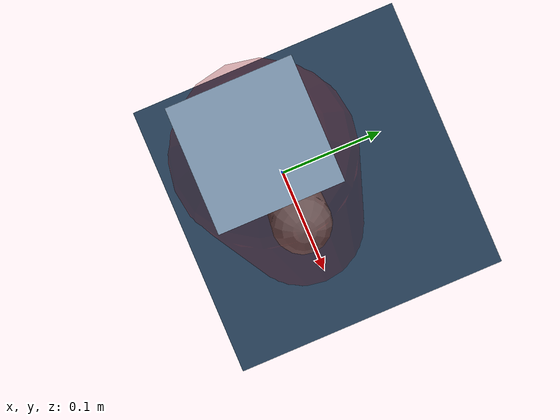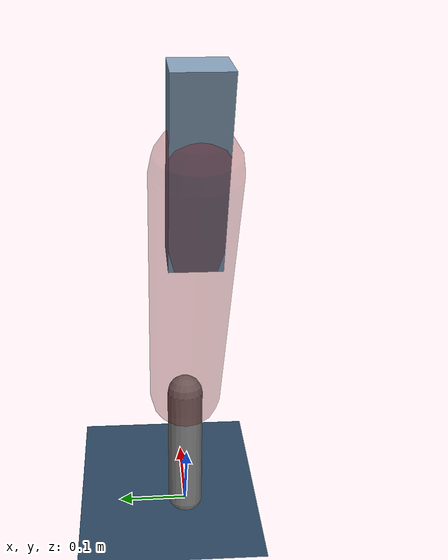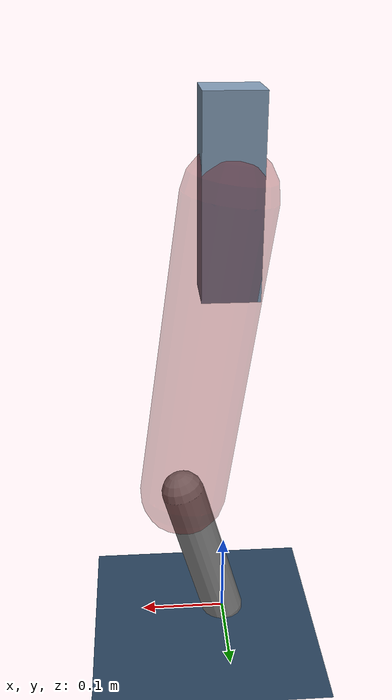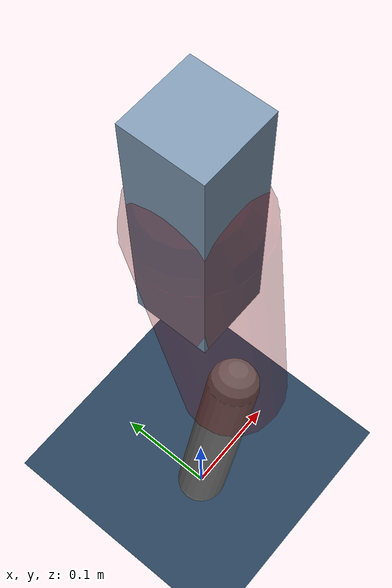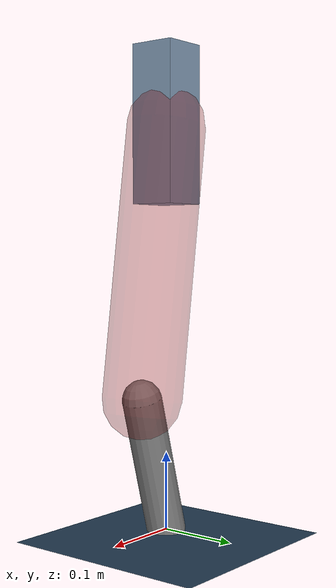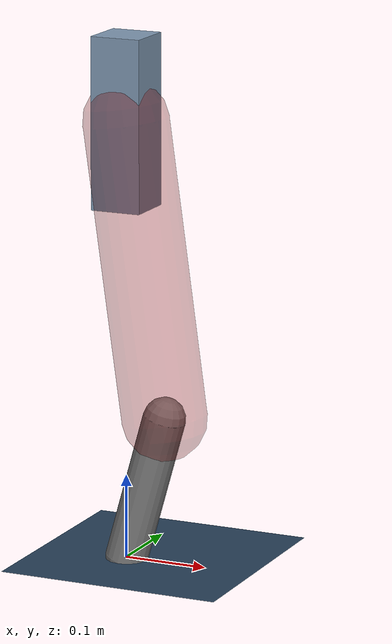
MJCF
<mujoco model="Hopper2D">
	<compiler inertiafromgeom="true" angle="radian" />
	<option timestep="0.001" integrator="implicit" cone="elliptic" solver="Newton" tolerance="1e-10" />

	<default>
		<geom contype="1" conaffinity="1" condim="3" friction="2 0.005 0.0001" solref="0.005 1" />
		<joint limited="true" damping="0.1" />
	</default>

	<asset>
		<texture name="skybox" type="skybox" builtin="gradient" rgb1=".4 .6 .8" rgb2="0 0 0" width="800" height="800" />
		<texture name="grid" type="2d" builtin="checker" rgb1=".1 .2 .3" rgb2=".2 .3 .4" width="300" height="300" mark="edge" markrgb=".2 .3 .4" />
		<material name="ground" texture="grid" texrepeat="1 1" texuniform="true" reflectance="0.1" />
		<material name="leg" rgba="0.5 0.6 0.7 1" />
	</asset>

	<worldbody>

		<geom name="floor" type="plane" size="5 5 0.25" material="ground" />

		<light directional="false" diffuse="0.8 0.8 0.8" specular="0.3 0.3 0.3" pos="0 0 2" dir="0 0 -1" />
		<light mode="targetbodycom" target="base" directional="false" diffuse="0.8 0.8 0.8" specular="0.3 0.3 0.3" pos="0 0 2" dir="0 0 -1" />

		<camera name="fixed" pos="0 -2 1" xyaxes="1 0 0 0 0 1" />
		<camera name="tracking" mode="trackcom" pos="0 -3 1" />

		<body name="root" pos="0 0 0.5174709622547989">
			<joint name="slide_x" type="slide" axis="1 0 0" range="-100 100" />
			<joint name="slide_z" type="slide" axis="0 0 1" range="0 10" />

			<body name="base" pos="0 0 0">
				<geom name="torso" type="box" size="0.03 0.03 0.1" mass="3.9459999999999997" material="leg" />

				<body name="link1" pos="0 0 0" euler="0 1.4310699180935844 0">
					<joint type="hinge" axis="0 -1 0" pos="0 0 0" name="hinge1" limited="true" range="-3.14 3.14" stiffness="0" damping="0.1" />
					<geom name="thigh" type="capsule" fromto="0 0 0 0.34731368505864824 0 0" size="0.05" rgba="0.5 0 0 0.3" mass="1.1191783181642152" />

					<body name="link2" pos="0.34731368505864824 0 0" euler="0 0.4115556422792741 0">
						<joint type="hinge" axis="0 -1 0" pos="0 0 0" name="hinge2" limited="true" range="-3.14 3.14" stiffness="0" damping="0.1" />
						<geom name="shank" type="capsule" fromto="0 0 0 0.1801572771961507 0 0" size="0.025" mass="0.3840415494765357" />

					</body>
				</body>
			</body>
		</body>
	</worldbody>

	<actuator>
		<motor name="torque1" joint="hinge1" ctrlrange="-194.96622034983383 194.96622034983383" ctrllimited="true" gear="1" />
		<motor name="torque2" joint="hinge2" ctrlrange="-112.61829145871339 112.61829145871339" ctrllimited="true" gear="1" />
	</actuator>
</mujoco>
